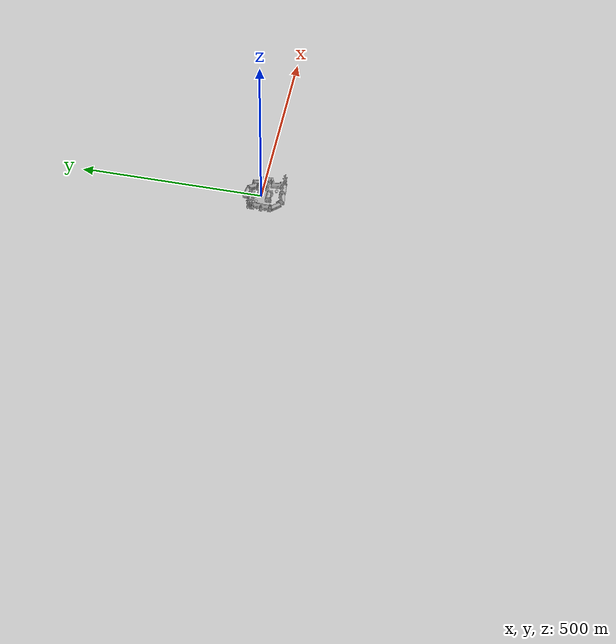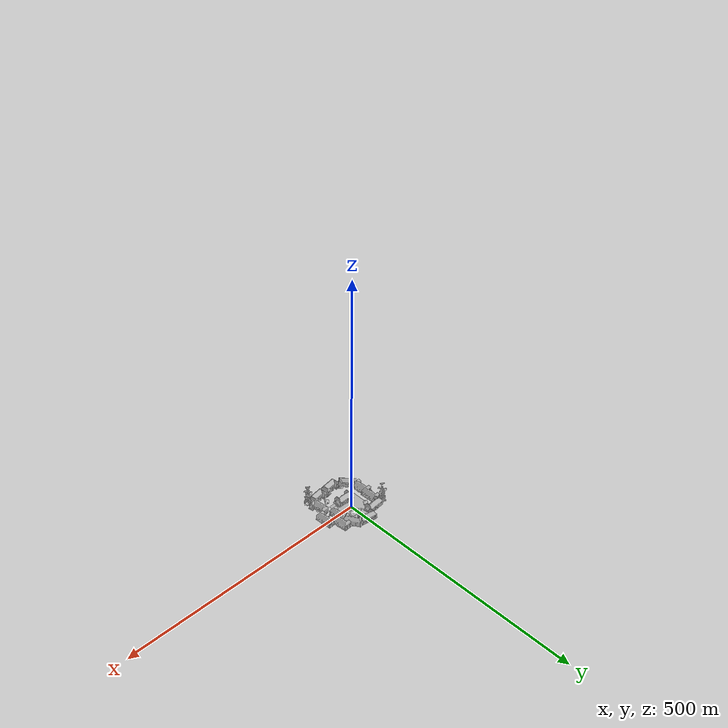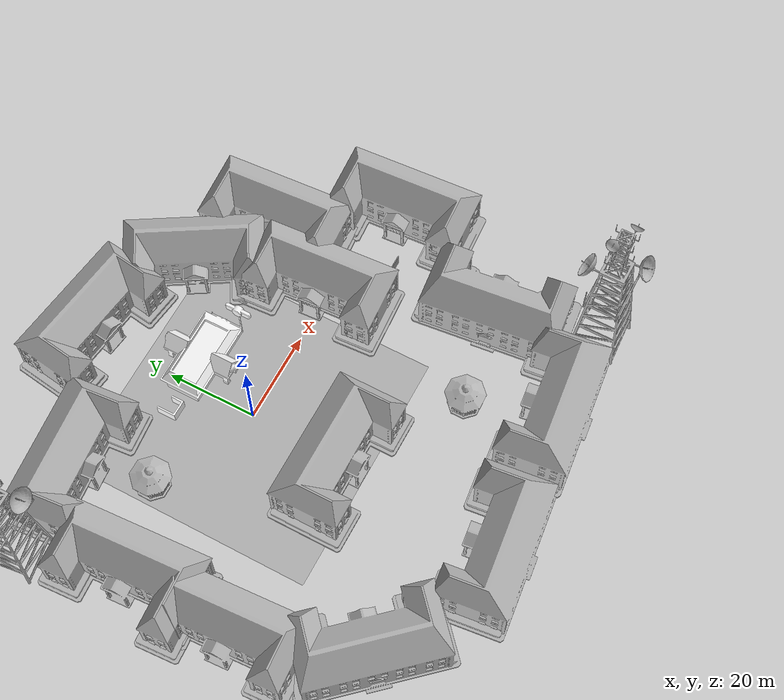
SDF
<sdf version="1.7">
 <world name="default">
  <plugin name="mrs_gazebo_static_transform_republisher_plugin" filename="libMRSGazeboStaticTransformRepublisher.so"/>
  <spherical_coordinates>
   <surface_model>EARTH_WGS84</surface_model>
   <latitude_deg>47.3977</latitude_deg>
   <longitude_deg>8.54559</longitude_deg>
   <elevation>0</elevation>
   <heading_deg>0</heading_deg>
  </spherical_coordinates>
  <physics name="default_physics" default="0" type="ode">
   <ode>
    <solver>
     <type>quick</type>
     <iters>10</iters>
     <sor>1.3</sor>
     <use_dynamic_moi_rescaling>0</use_dynamic_moi_rescaling>
    </solver>
    <constraints>
     <cfm>0</cfm>
     <erp>0.2</erp>
     <contact_max_correcting_vel>1000</contact_max_correcting_vel>
     <contact_surface_layer>0.001</contact_surface_layer>
    </constraints>
   </ode>
   <max_step_size>0.004</max_step_size>
   <real_time_factor>1</real_time_factor>
   <real_time_update_rate>250</real_time_update_rate>
  </physics>
  <scene><shadows>0</shadows><ambient>0.4 0.4 0.4 1</ambient><background>0.7 0.7 0.7 1</background></scene>
  <light name="sun" type="directional">
   <pose>0 0 1000 0.4 0.2 0</pose>
   <diffuse>1 1 1 1</diffuse>
   <specular>0.6 0.6 0.6 1</specular>
   <direction>0.1 0.1 -0.9</direction>
   <attenuation>
    <range>20</range>
    <constant>0.5</constant>
    <linear>0.01</linear>
    <quadratic>0.001</quadratic>
   </attenuation>
   <spot><inner_angle>0</inner_angle><outer_angle>0</outer_angle><falloff>0</falloff></spot>
  </light>
  <model name="ground_plane">
   <static>1</static>
   <link name="link">
    <collision name="collision">
     <geometry><plane><normal>0 0 1</normal><size>250 250</size></plane></geometry>
     <surface><friction><ode><mu>1</mu><mu2>1</mu2></ode></friction></surface>
    </collision>
    <visual name="grass">
     <cast_shadows>0</cast_shadows>
     <geometry><mesh><uri>file://grass_plane/meshes/grass_plane.dae</uri></mesh></geometry>
    </visual>
   </link>
  </model>
  <model name="the_void">
   <static>1</static>
   <link name="link">
    <pose>0 0 0.1 0 -0 0</pose>
    <visual name="the_void">
     <pose>0 0 2 0 -0 0</pose>
     <geometry><sphere><radius>0.25</radius></sphere></geometry>
     <material>
      <script><uri>file://media/materials/scripts/Gazebo.material</uri><name>Gazebo/Black</name></script>
     </material>
    </visual>
   </link>
   <pose>-1000 -1000 0 0 -0 0</pose>
  </model>
  <plugin name="mrs_gazebo_rviz_cam_synchronizer" filename="libMRSGazeboRvizCameraSynchronizer.so">
   <target_frame_id>gazebo_user_camera</target_frame_id>
   <world_origin_frame_id>uav1/gps_origin</world_origin_frame_id>
   <frame_to_follow>uav1</frame_to_follow>
  </plugin>
  <gravity>0 0 -9.8066</gravity>
  <magnetic_field>6e-06 2.3e-05 -4.2e-05</magnetic_field>
  <atmosphere type="adiabatic"/>
  <model name="Fast Food">
   <static>1</static>
   <link name="link">
    <pose>0 0 3.15931 0 -0 0</pose>
    <collision name="collision">
     <geometry><mesh><scale>3 3 2</scale><uri>model://fast_food/meshes/fast_food.dae</uri></mesh></geometry>
    </collision>
    <visual name="visual">
     <geometry><mesh><scale>3 3 2</scale><uri>model://fast_food/meshes/fast_food.dae</uri></mesh></geometry>
     <material>
      <script>
       <uri>model://fast_food/materials/scripts</uri>
       <uri>model://fast_food/materials/textures</uri>
       <name>FastFood/Diffuse</name>
      </script>
      <shader type="normal_map_tangent_space"><normal_map>FastFood_Normal.png</normal_map></shader>
     </material>
    </visual>
   </link>
   <pose>5.60462 15.4673 0 0 -0 0</pose>
  </model>
  <model name="gazebo">
   <static>1</static>
   <link name="link">
    <collision name="collision">
     <geometry><mesh><scale>3 3 2.5</scale><uri>model://gazebo/meshes/gazebo.dae</uri></mesh></geometry>
    </collision>
    <visual name="visual">
     <geometry><mesh><scale>3 3 2.5</scale><uri>model://gazebo/meshes/gazebo.dae</uri></mesh></geometry>
    </visual>
   </link>
   <pose>-22.6107 10.3637 0 0 -0 0</pose>
  </model>
  <model name="gazebo_0">
   <static>1</static>
   <link name="link">
    <collision name="collision">
     <geometry><mesh><scale>3 3 2.5</scale><uri>model://gazebo/meshes/gazebo.dae</uri></mesh></geometry>
    </collision>
    <visual name="visual">
     <geometry><mesh><scale>3 3 2.5</scale><uri>model://gazebo/meshes/gazebo.dae</uri></mesh></geometry>
    </visual>
   </link>
   <pose>23.2565 -37.378 0 0 -0 0</pose>
  </model>
  <model name="radio_tower">
   <static>1</static>
   <link name="link">
    <collision name="collision">
     <geometry><mesh><uri>model://radio_tower/meshes/radio_tower.dae</uri></mesh></geometry>
    </collision>
    <visual name="visual">
     <geometry><mesh><uri>model://radio_tower/meshes/radio_tower.dae</uri></mesh></geometry>
    </visual>
   </link>
   <pose>-47.1884 25.772 0 0 -0 0</pose>
  </model>
  <model name="radio_tower_0">
   <static>1</static>
   <link name="link">
    <collision name="collision">
     <geometry><mesh><uri>model://radio_tower/meshes/radio_tower.dae</uri></mesh></geometry>
    </collision>
    <visual name="visual">
     <geometry><mesh><uri>model://radio_tower/meshes/radio_tower.dae</uri></mesh></geometry>
    </visual>
   </link>
   <pose>50.5154 -55.7285 0 0 -0 0</pose>
  </model>
  <model name="school">
   <static>1</static>
   <link name="link">
    <collision name="collision">
     <geometry><mesh><uri>model://school/meshes/school.dae</uri></mesh></geometry>
    </collision>
    <visual name="visual"><geometry><mesh><uri>model://school/meshes/school.dae</uri></mesh></geometry></visual>
   </link>
   <pose>-1.40606 -19.0185 0 0 -0 0</pose>
  </model>
  <model name="school_0">
   <static>1</static>
   <link name="link">
    <collision name="collision">
     <geometry><mesh><uri>model://school/meshes/school.dae</uri></mesh></geometry>
    </collision>
    <visual name="visual"><geometry><mesh><uri>model://school/meshes/school.dae</uri></mesh></geometry></visual>
   </link>
   <pose>33.4554 1.56103 0 0 0 -1.50902</pose>
  </model>
  <model name="school_0_clone">
   <static>1</static>
   <link name="link">
    <collision name="collision">
     <geometry><mesh><uri>model://school/meshes/school.dae</uri></mesh></geometry>
    </collision>
    <visual name="visual"><geometry><mesh><uri>model://school/meshes/school.dae</uri></mesh></geometry></visual>
   </link>
   <pose>-39.3513 3.84843 0 0 0 -1.50902</pose>
  </model>
  <model name="school_0_clone_0">
   <static>1</static>
   <link name="link">
    <collision name="collision">
     <geometry><mesh><uri>model://school/meshes/school.dae</uri></mesh></geometry>
    </collision>
    <visual name="visual"><geometry><mesh><uri>model://school/meshes/school.dae</uri></mesh></geometry></visual>
   </link>
   <pose>-27.3494 27.6301 0 0 -0 0.090398</pose>
  </model>
  <model name="school_0_clone_1">
   <static>1</static>
   <link name="link">
    <collision name="collision">
     <geometry><mesh><uri>model://school/meshes/school.dae</uri></mesh></geometry>
    </collision>
    <visual name="visual"><geometry><mesh><uri>model://school/meshes/school.dae</uri></mesh></geometry></visual>
   </link>
   <pose>-40.9158 -19.5401 0 0 0 -1.50902</pose>
  </model>
  <model name="school_0_clone_2">
   <static>1</static>
   <link name="link">
    <collision name="collision">
     <geometry><mesh><uri>model://school/meshes/school.dae</uri></mesh></geometry>
    </collision>
    <visual name="visual"><geometry><mesh><uri>model://school/meshes/school.dae</uri></mesh></geometry></visual>
   </link>
   <pose>-33.5998 -46.0293 0 0 -0 2.30743</pose>
  </model>
  <model name="school_0_clone_3">
   <static>1</static>
   <link name="link">
    <collision name="collision">
     <geometry><mesh><uri>model://school/meshes/school.dae</uri></mesh></geometry>
    </collision>
    <visual name="visual"><geometry><mesh><uri>model://school/meshes/school.dae</uri></mesh></geometry></visual>
   </link>
   <pose>42.4148 -34.2403 0 0 -0 1.68097</pose>
  </model>
  <model name="school_0_clone_4">
   <static>1</static>
   <link name="link">
    <collision name="collision">
     <geometry><mesh><uri>model://school/meshes/school.dae</uri></mesh></geometry>
    </collision>
    <visual name="visual"><geometry><mesh><uri>model://school/meshes/school.dae</uri></mesh></geometry></visual>
   </link>
   <pose>29.0027 -56.4592 0 0 0 -3.02784</pose>
  </model>
  <model name="school_0_clone_5">
   <static>1</static>
   <link name="link">
    <collision name="collision">
     <geometry><mesh><uri>model://school/meshes/school.dae</uri></mesh></geometry>
    </collision>
    <visual name="visual"><geometry><mesh><uri>model://school/meshes/school.dae</uri></mesh></geometry></visual>
   </link>
   <pose>-3.24116 -59.4907 0 0 0 -3.02553</pose>
  </model>
  <model name="school_0_clone_0_clone">
   <static>1</static>
   <link name="link">
    <collision name="collision">
     <geometry><mesh><uri>model://school/meshes/school.dae</uri></mesh></geometry>
    </collision>
    <visual name="visual"><geometry><mesh><uri>model://school/meshes/school.dae</uri></mesh></geometry></visual>
   </link>
   <pose>1.6541 41.2067 0 0 0 -0.134335</pose>
  </model>
  <model name="school_0_clone_0_clone_0">
   <static>1</static>
   <link name="link">
    <collision name="collision">
     <geometry><mesh><uri>model://school/meshes/school.dae</uri></mesh></geometry>
    </collision>
    <visual name="visual"><geometry><mesh><uri>model://school/meshes/school.dae</uri></mesh></geometry></visual>
   </link>
   <pose>25.9747 28.8974 0 0 0 -1.02927</pose>
  </model>
  <model name="grey_wall">
   <static>1</static>
   <link name="link">
    <pose>0 0 1.4 0 -0 0</pose>
    <collision name="collision"><geometry><box><size>7.5 0.2 2.8</size></box></geometry></collision>
    <visual name="visual">
     <cast_shadows>0</cast_shadows>
     <geometry><box><size>7.5 0.2 2.8</size></box></geometry>
     <material>
      <script>
       <uri>model://grey_wall/materials/scripts</uri>
       <uri>model://grey_wall/materials/textures</uri>
       <name>vrc/grey_wall</name>
      </script>
     </material>
    </visual>
   </link>
   <pose>42.4568 -9.60191 0 0 -0 0</pose>
  </model>
  <model name="school_0_clone_6">
   <static>1</static>
   <link name="link">
    <collision name="collision">
     <geometry><mesh><uri>model://school/meshes/school.dae</uri></mesh></geometry>
    </collision>
    <visual name="visual"><geometry><mesh><uri>model://school/meshes/school.dae</uri></mesh></geometry></visual>
   </link>
   <pose>57.9843 -5.6962 0 0 0 -1.50902</pose>
  </model>
  <model name="school_0_clone_6_clone">
   <static>1</static>
   <link name="link">
    <collision name="collision">
     <geometry><mesh><uri>model://school/meshes/school.dae</uri></mesh></geometry>
    </collision>
    <visual name="visual"><geometry><mesh><uri>model://school/meshes/school.dae</uri></mesh></geometry></visual>
   </link>
   <pose>43.1419 17.4886 0 0 0 -1.50902</pose>
  </model>
 </world>
</sdf>
